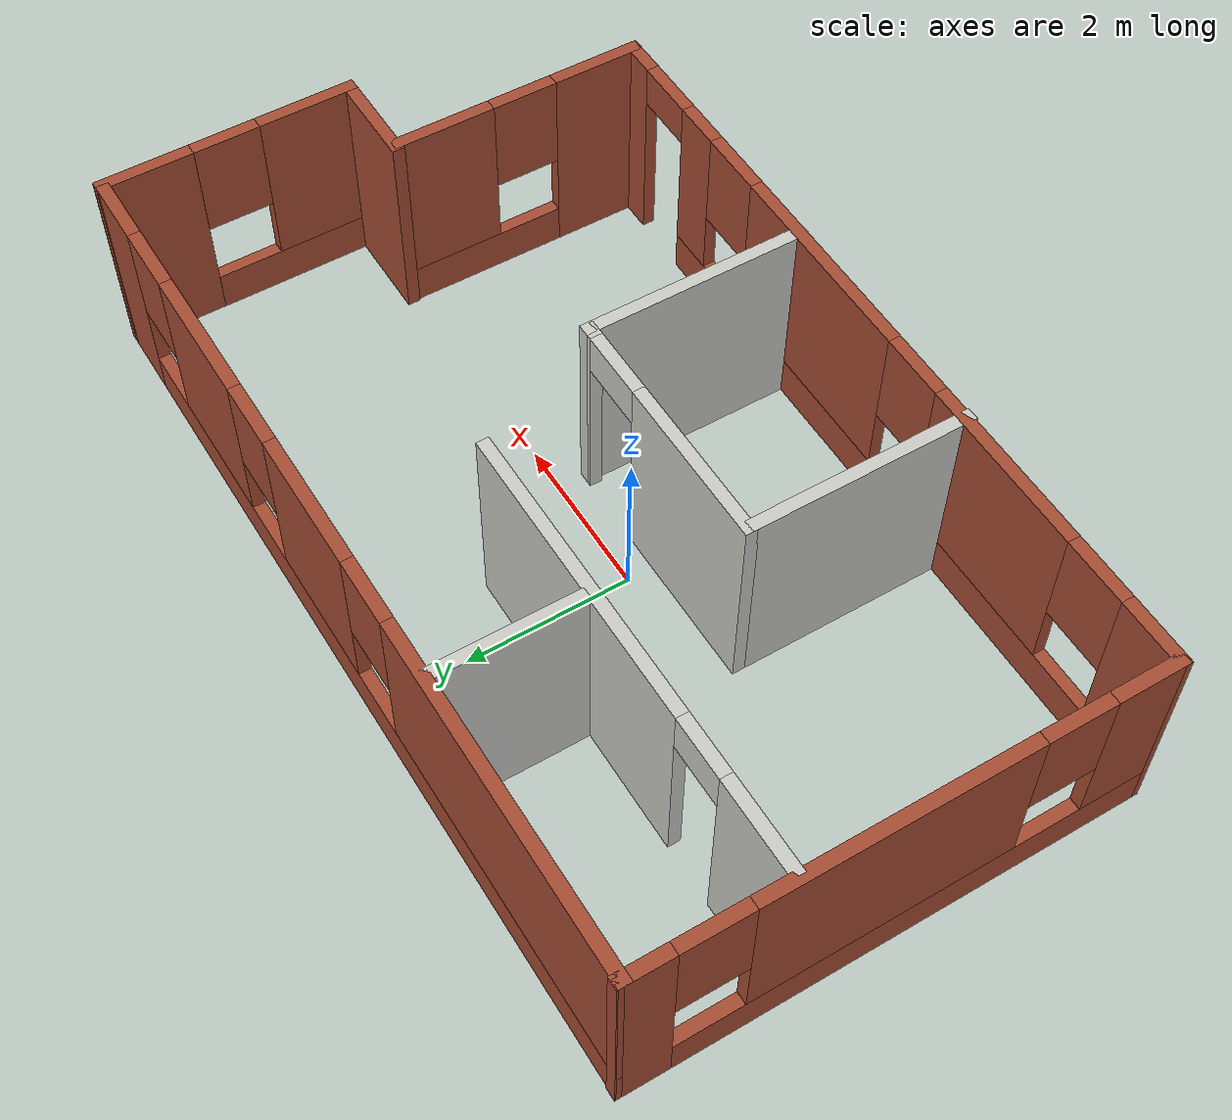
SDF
<?xml version='1.0'?>
<sdf version='1.6'>
  <model name='building'>
    <pose frame=''>0.568918 0.03593 0 0 -0 0</pose>
    <link name='Wall_1'>
      <pose frame=''>5.34876 1.53922 0 0 0 -1.5708</pose>
      <visual name='Wall_1_Visual_0'>
        <pose frame=''>-1.00974 0 1.25 0 -0 0</pose>
        <geometry>
          <box>
            <size>1.12727 0.15 2.5</size>
          </box>
        </geometry>
        <material>
          <script>
            <uri>file://media/materials/scripts/gazebo.material</uri>
            <name>Gazebo/Bricks</name>
          </script>
          <ambient>0.760784 0.662745 0.627451 1</ambient>
        </material>
        <meta>
          <layer>0</layer>
        </meta>
      </visual>
      <collision name='Wall_1_Collision_0'>
        <geometry>
          <box>
            <size>1.12727 0.15 2.5</size>
          </box>
        </geometry>
        <pose frame=''>-1.00974 0 1.25 0 -0 0</pose>
      </collision>
      <visual name='Wall_1_Visual_1'>
        <pose frame=''>0.563636 0 0.25 0 -0 0</pose>
        <geometry>
          <box>
            <size>2.01948 0.15 0.5</size>
          </box>
        </geometry>
        <material>
          <script>
            <uri>file://media/materials/scripts/gazebo.material</uri>
            <name>Gazebo/Bricks</name>
          </script>
          <ambient>0.760784 0.662745 0.627451 1</ambient>
        </material>
        <meta>
          <layer>0</layer>
        </meta>
      </visual>
      <collision name='Wall_1_Collision_1'>
        <geometry>
          <box>
            <size>2.01948 0.15 0.5</size>
          </box>
        </geometry>
        <pose frame=''>0.563636 0 0.25 0 -0 0</pose>
      </collision>
      <visual name='Wall_1_Visual_2'>
        <pose frame=''>0.963636 0 1.5 0 -0 0</pose>
        <geometry>
          <box>
            <size>1.21948 0.15 2</size>
          </box>
        </geometry>
        <material>
          <script>
            <uri>file://media/materials/scripts/gazebo.material</uri>
            <name>Gazebo/Bricks</name>
          </script>
          <ambient>0.760784 0.662745 0.627451 1</ambient>
        </material>
        <meta>
          <layer>0</layer>
        </meta>
      </visual>
      <collision name='Wall_1_Collision_2'>
        <geometry>
          <box>
            <size>1.21948 0.15 2</size>
          </box>
        </geometry>
        <pose frame=''>0.963636 0 1.5 0 -0 0</pose>
      </collision>
      <visual name='Wall_1_Visual_3'>
        <pose frame=''>-0.046104 0 1.9 0 -0 0</pose>
        <geometry>
          <box>
            <size>0.8 0.15 1.2</size>
          </box>
        </geometry>
        <material>
          <script>
            <uri>file://media/materials/scripts/gazebo.material</uri>
            <name>Gazebo/Bricks</name>
          </script>
          <ambient>0.760784 0.662745 0.627451 1</ambient>
        </material>
        <meta>
          <layer>0</layer>
        </meta>
      </visual>
      <collision name='Wall_1_Collision_3'>
        <geometry>
          <box>
            <size>0.8 0.15 1.2</size>
          </box>
        </geometry>
        <pose frame=''>-0.046104 0 1.9 0 -0 0</pose>
      </collision>
    </link>
    <link name='Wall_10'>
      <pose frame=''>-5.34324 0.03987 0 0 0 -1.57246</pose>
      <visual name='Wall_10_Visual_0'>
        <pose frame=''>-2.76797 0 1.25 0 -0 0</pose>
        <geometry>
          <box>
            <size>0.609515 0.15 2.5</size>
          </box>
        </geometry>
        <material>
          <script>
            <uri>file://media/materials/scripts/gazebo.material</uri>
            <name>Gazebo/Bricks</name>
          </script>
          <ambient>0.760784 0.662745 0.627451 1</ambient>
        </material>
        <meta>
          <layer>0</layer>
        </meta>
      </visual>
      <collision name='Wall_10_Collision_0'>
        <geometry>
          <box>
            <size>0.609515 0.15 2.5</size>
          </box>
        </geometry>
        <pose frame=''>-2.76797 0 1.25 0 -0 0</pose>
      </collision>
      <visual name='Wall_10_Visual_1'>
        <pose frame=''>0.304757 0 0.25 0 -0 0</pose>
        <geometry>
          <box>
            <size>5.53594 0.15 0.5</size>
          </box>
        </geometry>
        <material>
          <script>
            <uri>file://media/materials/scripts/gazebo.material</uri>
            <name>Gazebo/Bricks</name>
          </script>
          <ambient>0.760784 0.662745 0.627451 1</ambient>
        </material>
        <meta>
          <layer>0</layer>
        </meta>
      </visual>
      <collision name='Wall_10_Collision_1'>
        <geometry>
          <box>
            <size>5.53594 0.15 0.5</size>
          </box>
        </geometry>
        <pose frame=''>0.304757 0 0.25 0 -0 0</pose>
      </collision>
      <visual name='Wall_10_Visual_2'>
        <pose frame=''>-0.115297 0 1.5 0 -0 0</pose>
        <geometry>
          <box>
            <size>3.09583 0.15 2</size>
          </box>
        </geometry>
        <material>
          <script>
            <uri>file://media/materials/scripts/gazebo.material</uri>
            <name>Gazebo/Bricks</name>
          </script>
          <ambient>0.760784 0.662745 0.627451 1</ambient>
        </material>
        <meta>
          <layer>0</layer>
        </meta>
      </visual>
      <collision name='Wall_10_Collision_2'>
        <geometry>
          <box>
            <size>3.09583 0.15 2</size>
          </box>
        </geometry>
        <pose frame=''>-0.115297 0 1.5 0 -0 0</pose>
      </collision>
      <visual name='Wall_10_Visual_3'>
        <pose frame=''>2.65267 0 1.5 0 -0 0</pose>
        <geometry>
          <box>
            <size>0.840109 0.15 2</size>
          </box>
        </geometry>
        <material>
          <script>
            <uri>file://media/materials/scripts/gazebo.material</uri>
            <name>Gazebo/Bricks</name>
          </script>
          <ambient>0.760784 0.662745 0.627451 1</ambient>
        </material>
        <meta>
          <layer>0</layer>
        </meta>
      </visual>
      <collision name='Wall_10_Collision_3'>
        <geometry>
          <box>
            <size>0.840109 0.15 2</size>
          </box>
        </geometry>
        <pose frame=''>2.65267 0 1.5 0 -0 0</pose>
      </collision>
      <visual name='Wall_10_Visual_4'>
        <pose frame=''>-2.06321 0 1.9 0 -0 0</pose>
        <geometry>
          <box>
            <size>0.8 0.15 1.2</size>
          </box>
        </geometry>
        <material>
          <script>
            <uri>file://media/materials/scripts/gazebo.material</uri>
            <name>Gazebo/Bricks</name>
          </script>
          <ambient>0.760784 0.662745 0.627451 1</ambient>
        </material>
        <meta>
          <layer>0</layer>
        </meta>
      </visual>
      <collision name='Wall_10_Collision_4'>
        <geometry>
          <box>
            <size>0.8 0.15 1.2</size>
          </box>
        </geometry>
        <pose frame=''>-2.06321 0 1.9 0 -0 0</pose>
      </collision>
      <visual name='Wall_10_Visual_5'>
        <pose frame=''>1.83262 0 1.9 0 -0 0</pose>
        <geometry>
          <box>
            <size>0.8 0.15 1.2</size>
          </box>
        </geometry>
        <material>
          <script>
            <uri>file://media/materials/scripts/gazebo.material</uri>
            <name>Gazebo/Bricks</name>
          </script>
          <ambient>0.760784 0.662745 0.627451 1</ambient>
        </material>
        <meta>
          <layer>0</layer>
        </meta>
      </visual>
      <collision name='Wall_10_Collision_5'>
        <geometry>
          <box>
            <size>0.8 0.15 1.2</size>
          </box>
        </geometry>
        <pose frame=''>1.83262 0 1.9 0 -0 0</pose>
      </collision>
    </link>
    <link name='Wall_13'>
      <pose frame=''>-0.548605 -3.00414 0 0 0 -0.006888</pose>
      <visual name='Wall_13_Visual_0'>
        <pose frame=''>-4.45248 0 1.25 0 -0 0</pose>
        <geometry>
          <box>
            <size>0.844541 0.15 2.5</size>
          </box>
        </geometry>
        <material>
          <script>
            <uri>file://media/materials/scripts/gazebo.material</uri>
            <name>Gazebo/Bricks</name>
          </script>
          <ambient>0.760784 0.662745 0.627451 1</ambient>
        </material>
        <meta>
          <layer>0</layer>
        </meta>
      </visual>
      <collision name='Wall_13_Collision_0'>
        <geometry>
          <box>
            <size>0.844541 0.15 2.5</size>
          </box>
        </geometry>
        <pose frame=''>-4.45248 0 1.25 0 -0 0</pose>
      </collision>
      <visual name='Wall_13_Visual_1'>
        <pose frame=''>4.62526 0 1.25 0 -0 0</pose>
        <geometry>
          <box>
            <size>0.498993 0.15 2.5</size>
          </box>
        </geometry>
        <material>
          <script>
            <uri>file://media/materials/scripts/gazebo.material</uri>
            <name>Gazebo/Bricks</name>
          </script>
          <ambient>0.760784 0.662745 0.627451 1</ambient>
        </material>
        <meta>
          <layer>0</layer>
        </meta>
      </visual>
      <collision name='Wall_13_Collision_1'>
        <geometry>
          <box>
            <size>0.498993 0.15 2.5</size>
          </box>
        </geometry>
        <pose frame=''>4.62526 0 1.25 0 -0 0</pose>
      </collision>
      <visual name='Wall_13_Visual_2'>
        <pose frame=''>-0.202226 0 0.25 0 -0 0</pose>
        <geometry>
          <box>
            <size>7.65597 0.15 0.5</size>
          </box>
        </geometry>
        <material>
          <script>
            <uri>file://media/materials/scripts/gazebo.material</uri>
            <name>Gazebo/Bricks</name>
          </script>
          <ambient>0.760784 0.662745 0.627451 1</ambient>
        </material>
        <meta>
          <layer>0</layer>
        </meta>
      </visual>
      <collision name='Wall_13_Collision_2'>
        <geometry>
          <box>
            <size>7.65597 0.15 0.5</size>
          </box>
        </geometry>
        <pose frame=''>-0.202226 0 0.25 0 -0 0</pose>
      </collision>
      <visual name='Wall_13_Visual_3'>
        <pose frame=''>-2.17118 0 1.5 0 -0 0</pose>
        <geometry>
          <box>
            <size>2.11806 0.15 2</size>
          </box>
        </geometry>
        <material>
          <script>
            <uri>file://media/materials/scripts/gazebo.material</uri>
            <name>Gazebo/Bricks</name>
          </script>
          <ambient>0.760784 0.662745 0.627451 1</ambient>
        </material>
        <meta>
          <layer>0</layer>
        </meta>
      </visual>
      <collision name='Wall_13_Collision_3'>
        <geometry>
          <box>
            <size>2.11806 0.15 2</size>
          </box>
        </geometry>
        <pose frame=''>-2.17118 0 1.5 0 -0 0</pose>
      </collision>
      <visual name='Wall_13_Visual_4'>
        <pose frame=''>0.966898 0 1.5 0 -0 0</pose>
        <geometry>
          <box>
            <size>2.55809 0.15 2</size>
          </box>
        </geometry>
        <material>
          <script>
            <uri>file://media/materials/scripts/gazebo.material</uri>
            <name>Gazebo/Bricks</name>
          </script>
          <ambient>0.760784 0.662745 0.627451 1</ambient>
        </material>
        <meta>
          <layer>0</layer>
        </meta>
      </visual>
      <collision name='Wall_13_Collision_4'>
        <geometry>
          <box>
            <size>2.55809 0.15 2</size>
          </box>
        </geometry>
        <pose frame=''>0.966898 0 1.5 0 -0 0</pose>
      </collision>
      <visual name='Wall_13_Visual_5'>
        <pose frame=''>3.33585 0 1.5 0 -0 0</pose>
        <geometry>
          <box>
            <size>0.579815 0.15 2</size>
          </box>
        </geometry>
        <material>
          <script>
            <uri>file://media/materials/scripts/gazebo.material</uri>
            <name>Gazebo/Bricks</name>
          </script>
          <ambient>0.760784 0.662745 0.627451 1</ambient>
        </material>
        <meta>
          <layer>0</layer>
        </meta>
      </visual>
      <collision name='Wall_13_Collision_5'>
        <geometry>
          <box>
            <size>0.579815 0.15 2</size>
          </box>
        </geometry>
        <pose frame=''>3.33585 0 1.5 0 -0 0</pose>
      </collision>
      <visual name='Wall_13_Visual_6'>
        <pose frame=''>-3.63021 0 1.9 0 -0 0</pose>
        <geometry>
          <box>
            <size>0.8 0.15 1.2</size>
          </box>
        </geometry>
        <material>
          <script>
            <uri>file://media/materials/scripts/gazebo.material</uri>
            <name>Gazebo/Bricks</name>
          </script>
          <ambient>0.760784 0.662745 0.627451 1</ambient>
        </material>
        <meta>
          <layer>0</layer>
        </meta>
      </visual>
      <collision name='Wall_13_Collision_6'>
        <geometry>
          <box>
            <size>0.8 0.15 1.2</size>
          </box>
        </geometry>
        <pose frame=''>-3.63021 0 1.9 0 -0 0</pose>
      </collision>
      <visual name='Wall_13_Visual_7'>
        <pose frame=''>-0.712146 0 1.9 0 -0 0</pose>
        <geometry>
          <box>
            <size>0.8 0.15 1.2</size>
          </box>
        </geometry>
        <material>
          <script>
            <uri>file://media/materials/scripts/gazebo.material</uri>
            <name>Gazebo/Bricks</name>
          </script>
          <ambient>0.760784 0.662745 0.627451 1</ambient>
        </material>
        <meta>
          <layer>0</layer>
        </meta>
      </visual>
      <collision name='Wall_13_Collision_7'>
        <geometry>
          <box>
            <size>0.8 0.15 1.2</size>
          </box>
        </geometry>
        <pose frame=''>-0.712146 0 1.9 0 -0 0</pose>
      </collision>
      <visual name='Wall_13_Visual_8'>
        <pose frame=''>2.64594 0 1.9 0 -0 0</pose>
        <geometry>
          <box>
            <size>0.8 0.15 1.2</size>
          </box>
        </geometry>
        <material>
          <script>
            <uri>file://media/materials/scripts/gazebo.material</uri>
            <name>Gazebo/Bricks</name>
          </script>
          <ambient>0.760784 0.662745 0.627451 1</ambient>
        </material>
        <meta>
          <layer>0</layer>
        </meta>
      </visual>
      <collision name='Wall_13_Collision_8'>
        <geometry>
          <box>
            <size>0.8 0.15 1.2</size>
          </box>
        </geometry>
        <pose frame=''>2.64594 0 1.9 0 -0 0</pose>
      </collision>
      <visual name='Wall_13_Visual_9'>
        <pose frame=''>4.00076 0 2.25 0 -0 0</pose>
        <geometry>
          <box>
            <size>0.75 0.15 0.5</size>
          </box>
        </geometry>
        <material>
          <script>
            <uri>file://media/materials/scripts/gazebo.material</uri>
            <name>Gazebo/Bricks</name>
          </script>
          <ambient>0.760784 0.662745 0.627451 1</ambient>
        </material>
        <meta>
          <layer>0</layer>
        </meta>
      </visual>
      <collision name='Wall_13_Collision_9'>
        <geometry>
          <box>
            <size>0.75 0.15 0.5</size>
          </box>
        </geometry>
        <pose frame=''>4.00076 0 2.25 0 -0 0</pose>
      </collision>
    </link>
    <link name='Wall_14'>
      <pose frame=''>4.25603 -1.51802 0 0 -0 1.56748</pose>
      <visual name='Wall_14_Visual_0'>
        <pose frame=''>-1.01809 0 1.25 0 -0 0</pose>
        <geometry>
          <box>
            <size>1.12576 0.15 2.5</size>
          </box>
        </geometry>
        <material>
          <script>
            <uri>file://media/materials/scripts/gazebo.material</uri>
            <name>Gazebo/Bricks</name>
          </script>
          <ambient>0.760784 0.662745 0.627451 1</ambient>
        </material>
        <meta>
          <layer>0</layer>
        </meta>
      </visual>
      <collision name='Wall_14_Collision_0'>
        <geometry>
          <box>
            <size>1.12576 0.15 2.5</size>
          </box>
        </geometry>
        <pose frame=''>-1.01809 0 1.25 0 -0 0</pose>
      </collision>
      <visual name='Wall_14_Visual_1'>
        <pose frame=''>0.562881 0 0.25 0 -0 0</pose>
        <geometry>
          <box>
            <size>2.03618 0.15 0.5</size>
          </box>
        </geometry>
        <material>
          <script>
            <uri>file://media/materials/scripts/gazebo.material</uri>
            <name>Gazebo/Bricks</name>
          </script>
          <ambient>0.760784 0.662745 0.627451 1</ambient>
        </material>
        <meta>
          <layer>0</layer>
        </meta>
      </visual>
      <collision name='Wall_14_Collision_1'>
        <geometry>
          <box>
            <size>2.03618 0.15 0.5</size>
          </box>
        </geometry>
        <pose frame=''>0.562881 0 0.25 0 -0 0</pose>
      </collision>
      <visual name='Wall_14_Visual_2'>
        <pose frame=''>0.962881 0 1.5 0 -0 0</pose>
        <geometry>
          <box>
            <size>1.23618 0.15 2</size>
          </box>
        </geometry>
        <material>
          <script>
            <uri>file://media/materials/scripts/gazebo.material</uri>
            <name>Gazebo/Bricks</name>
          </script>
          <ambient>0.760784 0.662745 0.627451 1</ambient>
        </material>
        <meta>
          <layer>0</layer>
        </meta>
      </visual>
      <collision name='Wall_14_Collision_2'>
        <geometry>
          <box>
            <size>1.23618 0.15 2</size>
          </box>
        </geometry>
        <pose frame=''>0.962881 0 1.5 0 -0 0</pose>
      </collision>
      <visual name='Wall_14_Visual_3'>
        <pose frame=''>-0.055208 0 1.9 0 -0 0</pose>
        <geometry>
          <box>
            <size>0.8 0.15 1.2</size>
          </box>
        </geometry>
        <material>
          <script>
            <uri>file://media/materials/scripts/gazebo.material</uri>
            <name>Gazebo/Bricks</name>
          </script>
          <ambient>0.760784 0.662745 0.627451 1</ambient>
        </material>
        <meta>
          <layer>0</layer>
        </meta>
      </visual>
      <collision name='Wall_14_Collision_3'>
        <geometry>
          <box>
            <size>0.8 0.15 1.2</size>
          </box>
        </geometry>
        <pose frame=''>-0.055208 0 1.9 0 -0 0</pose>
      </collision>
    </link>
    <link name='Wall_16'>
      <pose frame=''>-2.57969 1.2373 0 0 -0 0</pose>
      <visual name='Wall_16_Visual_0'>
        <pose frame=''>-2.185 0 1.25 0 -0 0</pose>
        <geometry>
          <box>
            <size>1.13 0.15 2.5</size>
          </box>
        </geometry>
        <material>
          <script>
            <uri>file://media/materials/scripts/gazebo.material</uri>
            <name>Gazebo/CeilingTiled</name>
          </script>
          <ambient>0.760784 0.662745 0.627451 1</ambient>
        </material>
        <meta>
          <layer>0</layer>
        </meta>
      </visual>
      <collision name='Wall_16_Collision_0'>
        <geometry>
          <box>
            <size>1.13 0.15 2.5</size>
          </box>
        </geometry>
        <pose frame=''>-2.185 0 1.25 0 -0 0</pose>
      </collision>
      <visual name='Wall_16_Visual_1'>
        <pose frame=''>0.925 0 1.25 0 -0 0</pose>
        <geometry>
          <box>
            <size>3.65 0.15 2.5</size>
          </box>
        </geometry>
        <material>
          <script>
            <uri>file://media/materials/scripts/gazebo.material</uri>
            <name>Gazebo/CeilingTiled</name>
          </script>
          <ambient>0.760784 0.662745 0.627451 1</ambient>
        </material>
        <meta>
          <layer>0</layer>
        </meta>
      </visual>
      <collision name='Wall_16_Collision_1'>
        <geometry>
          <box>
            <size>3.65 0.15 2.5</size>
          </box>
        </geometry>
        <pose frame=''>0.925 0 1.25 0 -0 0</pose>
      </collision>
      <visual name='Wall_16_Visual_2'>
        <pose frame=''>-1.26 0 2.25 0 -0 0</pose>
        <geometry>
          <box>
            <size>0.72 0.15 0.5</size>
          </box>
        </geometry>
        <material>
          <script>
            <uri>file://media/materials/scripts/gazebo.material</uri>
            <name>Gazebo/CeilingTiled</name>
          </script>
          <ambient>0.760784 0.662745 0.627451 1</ambient>
        </material>
        <meta>
          <layer>0</layer>
        </meta>
      </visual>
      <collision name='Wall_16_Collision_2'>
        <geometry>
          <box>
            <size>0.72 0.15 0.5</size>
          </box>
        </geometry>
        <pose frame=''>-1.26 0 2.25 0 -0 0</pose>
      </collision>
    </link>
    <link name='Wall_18'>
      <collision name='Wall_18_Collision'>
        <geometry>
          <box>
            <size>1.75 0.15 2.5</size>
          </box>
        </geometry>
        <pose frame=''>0 0 1.25 0 -0 0</pose>
      </collision>
      <visual name='Wall_18_Visual'>
        <pose frame=''>0 0 1.25 0 -0 0</pose>
        <geometry>
          <box>
            <size>1.75 0.15 2.5</size>
          </box>
        </geometry>
        <material>
          <script>
            <uri>file://media/materials/scripts/gazebo.material</uri>
            <name>Gazebo/CeilingTiled</name>
          </script>
          <ambient>0.760784 0.662745 0.627451 1</ambient>
        </material>
        <meta>
          <layer>0</layer>
        </meta>
      </visual>
      <pose frame=''>-1.91892 2.15727 0 0 -0 1.5708</pose>
    </link>
    <link name='Wall_2'>
      <collision name='Wall_2_Collision'>
        <geometry>
          <box>
            <size>1.25 0.15 2.5</size>
          </box>
        </geometry>
        <pose frame=''>0 0 1.25 0 -0 0</pose>
      </collision>
      <visual name='Wall_2_Visual'>
        <pose frame=''>0 0 1.25 0 -0 0</pose>
        <geometry>
          <box>
            <size>1.25 0.15 2.5</size>
          </box>
        </geometry>
        <material>
          <script>
            <uri>file://media/materials/scripts/gazebo.material</uri>
            <name>Gazebo/Bricks</name>
          </script>
          <ambient>0.760784 0.662745 0.627451 1</ambient>
        </material>
        <meta>
          <layer>0</layer>
        </meta>
      </visual>
      <pose frame=''>4.78553 0.040845 0 0 -0 3.14159</pose>
    </link>
    <link name='Wall_21'>
      <pose frame=''>-0.600218 -0.41593 0 0 -0 3.14159</pose>
      <visual name='Wall_21_Visual_0'>
        <pose frame=''>-1.43751 0 1.25 0 -0 0</pose>
        <geometry>
          <box>
            <size>0.192376 0.15 2.5</size>
          </box>
        </geometry>
        <material>
          <script>
            <uri>file://media/materials/scripts/gazebo.material</uri>
            <name>Gazebo/CeilingTiled</name>
          </script>
          <ambient>0.760784 0.662745 0.627451 1</ambient>
        </material>
        <meta>
          <layer>0</layer>
        </meta>
      </visual>
      <collision name='Wall_21_Collision_0'>
        <geometry>
          <box>
            <size>0.192376 0.15 2.5</size>
          </box>
        </geometry>
        <pose frame=''>-1.43751 0 1.25 0 -0 0</pose>
      </collision>
      <visual name='Wall_21_Visual_1'>
        <pose frame=''>0.506188 0 1.25 0 -0 0</pose>
        <geometry>
          <box>
            <size>2.05502 0.15 2.5</size>
          </box>
        </geometry>
        <material>
          <script>
            <uri>file://media/materials/scripts/gazebo.material</uri>
            <name>Gazebo/CeilingTiled</name>
          </script>
          <ambient>0.760784 0.662745 0.627451 1</ambient>
        </material>
        <meta>
          <layer>0</layer>
        </meta>
      </visual>
      <collision name='Wall_21_Collision_1'>
        <geometry>
          <box>
            <size>2.05502 0.15 2.5</size>
          </box>
        </geometry>
        <pose frame=''>0.506188 0 1.25 0 -0 0</pose>
      </collision>
      <visual name='Wall_21_Visual_2'>
        <pose frame=''>-0.931324 0 2.25 0 -0 0</pose>
        <geometry>
          <box>
            <size>0.82 0.15 0.5</size>
          </box>
        </geometry>
        <material>
          <script>
            <uri>file://media/materials/scripts/gazebo.material</uri>
            <name>Gazebo/CeilingTiled</name>
          </script>
          <ambient>0.760784 0.662745 0.627451 1</ambient>
        </material>
        <meta>
          <layer>0</layer>
        </meta>
      </visual>
      <collision name='Wall_21_Collision_2'>
        <geometry>
          <box>
            <size>0.82 0.15 0.5</size>
          </box>
        </geometry>
        <pose frame=''>-0.931324 0 2.25 0 -0 0</pose>
      </collision>
    </link>
    <link name='Wall_24'>
      <collision name='Wall_24_Collision'>
        <geometry>
          <box>
            <size>2.75 0.15 2.5</size>
          </box>
        </geometry>
        <pose frame=''>0 0 1.25 0 -0 0</pose>
      </collision>
      <visual name='Wall_24_Visual'>
        <pose frame=''>0 0 1.25 0 -0 0</pose>
        <geometry>
          <box>
            <size>2.75 0.15 2.5</size>
          </box>
        </geometry>
        <material>
          <script>
            <uri>file://media/materials/scripts/gazebo.material</uri>
            <name>Gazebo/CeilingTiled</name>
          </script>
          <ambient>0.760784 0.662745 0.627451 1</ambient>
        </material>
        <meta>
          <layer>0</layer>
        </meta>
      </visual>
      <pose frame=''>-2.05892 -1.71593 0 0 0 -1.5708</pose>
    </link>
    <link name='Wall_26'>
      <collision name='Wall_26_Collision'>
        <geometry>
          <box>
            <size>2.75 0.15 2.5</size>
          </box>
        </geometry>
        <pose frame=''>0 0 1.25 0 -0 0</pose>
      </collision>
      <visual name='Wall_26_Visual'>
        <pose frame=''>0 0 1.25 0 -0 0</pose>
        <geometry>
          <box>
            <size>2.75 0.15 2.5</size>
          </box>
        </geometry>
        <material>
          <script>
            <uri>file://media/materials/scripts/gazebo.material</uri>
            <name>Gazebo/CeilingTiled</name>
          </script>
          <ambient>0.760784 0.662745 0.627451 1</ambient>
        </material>
        <meta>
          <layer>0</layer>
        </meta>
      </visual>
      <pose frame=''>0.871707 -1.71593 0 0 0 -1.5708</pose>
    </link>
    <link name='Wall_9'>
      <pose frame=''>-0.001355 3.03098 0 0 0 -3.14035</pose>
      <visual name='Wall_9_Visual_0'>
        <pose frame=''>-4.9586 0 1.25 0 -0 0</pose>
        <geometry>
          <box>
            <size>0.90659 0.15 2.5</size>
          </box>
        </geometry>
        <material>
          <script>
            <uri>file://media/materials/scripts/gazebo.material</uri>
            <name>Gazebo/Bricks</name>
          </script>
          <ambient>0.760784 0.662745 0.627451 1</ambient>
        </material>
        <meta>
          <layer>0</layer>
        </meta>
      </visual>
      <collision name='Wall_9_Collision_0'>
        <geometry>
          <box>
            <size>0.90659 0.15 2.5</size>
          </box>
        </geometry>
        <pose frame=''>-4.9586 0 1.25 0 -0 0</pose>
      </collision>
      <visual name='Wall_9_Visual_1'>
        <pose frame=''>0.453295 0 0.25 0 -0 0</pose>
        <geometry>
          <box>
            <size>9.91719 0.15 0.5</size>
          </box>
        </geometry>
        <material>
          <script>
            <uri>file://media/materials/scripts/gazebo.material</uri>
            <name>Gazebo/Bricks</name>
          </script>
          <ambient>0.760784 0.662745 0.627451 1</ambient>
        </material>
        <meta>
          <layer>0</layer>
        </meta>
      </visual>
      <collision name='Wall_9_Collision_1'>
        <geometry>
          <box>
            <size>9.91719 0.15 0.5</size>
          </box>
        </geometry>
        <pose frame=''>0.453295 0 0.25 0 -0 0</pose>
      </collision>
      <visual name='Wall_9_Visual_2'>
        <pose frame=''>-2.87958 0 1.5 0 -0 0</pose>
        <geometry>
          <box>
            <size>1.65145 0.15 2</size>
          </box>
        </geometry>
        <material>
          <script>
            <uri>file://media/materials/scripts/gazebo.material</uri>
            <name>Gazebo/Bricks</name>
          </script>
          <ambient>0.760784 0.662745 0.627451 1</ambient>
        </material>
        <meta>
          <layer>0</layer>
        </meta>
      </visual>
      <collision name='Wall_9_Collision_2'>
        <geometry>
          <box>
            <size>1.65145 0.15 2</size>
          </box>
        </geometry>
        <pose frame=''>-2.87958 0 1.5 0 -0 0</pose>
      </collision>
      <visual name='Wall_9_Visual_3'>
        <pose frame=''>-0.42226 0 1.5 0 -0 0</pose>
        <geometry>
          <box>
            <size>1.66318 0.15 2</size>
          </box>
        </geometry>
        <material>
          <script>
            <uri>file://media/materials/scripts/gazebo.material</uri>
            <name>Gazebo/Bricks</name>
          </script>
          <ambient>0.760784 0.662745 0.627451 1</ambient>
        </material>
        <meta>
          <layer>0</layer>
        </meta>
      </visual>
      <collision name='Wall_9_Collision_3'>
        <geometry>
          <box>
            <size>1.66318 0.15 2</size>
          </box>
        </geometry>
        <pose frame=''>-0.42226 0 1.5 0 -0 0</pose>
      </collision>
      <visual name='Wall_9_Visual_4'>
        <pose frame=''>3.31061 0 1.5 0 -0 0</pose>
        <geometry>
          <box>
            <size>4.20256 0.15 2</size>
          </box>
        </geometry>
        <material>
          <script>
            <uri>file://media/materials/scripts/gazebo.material</uri>
            <name>Gazebo/Bricks</name>
          </script>
          <ambient>0.760784 0.662745 0.627451 1</ambient>
        </material>
        <meta>
          <layer>0</layer>
        </meta>
      </visual>
      <collision name='Wall_9_Collision_4'>
        <geometry>
          <box>
            <size>4.20256 0.15 2</size>
          </box>
        </geometry>
        <pose frame=''>3.31061 0 1.5 0 -0 0</pose>
      </collision>
      <visual name='Wall_9_Visual_5'>
        <pose frame=''>-4.1053 0 1.9 0 -0 0</pose>
        <geometry>
          <box>
            <size>0.8 0.15 1.2</size>
          </box>
        </geometry>
        <material>
          <script>
            <uri>file://media/materials/scripts/gazebo.material</uri>
            <name>Gazebo/Bricks</name>
          </script>
          <ambient>0.760784 0.662745 0.627451 1</ambient>
        </material>
        <meta>
          <layer>0</layer>
        </meta>
      </visual>
      <collision name='Wall_9_Collision_5'>
        <geometry>
          <box>
            <size>0.8 0.15 1.2</size>
          </box>
        </geometry>
        <pose frame=''>-4.1053 0 1.9 0 -0 0</pose>
      </collision>
      <visual name='Wall_9_Visual_6'>
        <pose frame=''>-1.65385 0 1.9 0 -0 0</pose>
        <geometry>
          <box>
            <size>0.8 0.15 1.2</size>
          </box>
        </geometry>
        <material>
          <script>
            <uri>file://media/materials/scripts/gazebo.material</uri>
            <name>Gazebo/Bricks</name>
          </script>
          <ambient>0.760784 0.662745 0.627451 1</ambient>
        </material>
        <meta>
          <layer>0</layer>
        </meta>
      </visual>
      <collision name='Wall_9_Collision_6'>
        <geometry>
          <box>
            <size>0.8 0.15 1.2</size>
          </box>
        </geometry>
        <pose frame=''>-1.65385 0 1.9 0 -0 0</pose>
      </collision>
      <visual name='Wall_9_Visual_7'>
        <pose frame=''>0.809331 0 1.9 0 -0 0</pose>
        <geometry>
          <box>
            <size>0.8 0.15 1.2</size>
          </box>
        </geometry>
        <material>
          <script>
            <uri>file://media/materials/scripts/gazebo.material</uri>
            <name>Gazebo/Bricks</name>
          </script>
          <ambient>0.760784 0.662745 0.627451 1</ambient>
        </material>
        <meta>
          <layer>0</layer>
        </meta>
      </visual>
      <collision name='Wall_9_Collision_7'>
        <geometry>
          <box>
            <size>0.8 0.15 1.2</size>
          </box>
        </geometry>
        <pose frame=''>0.809331 0 1.9 0 -0 0</pose>
      </collision>
    </link>
    <static>1</static>
  </model>
</sdf>
